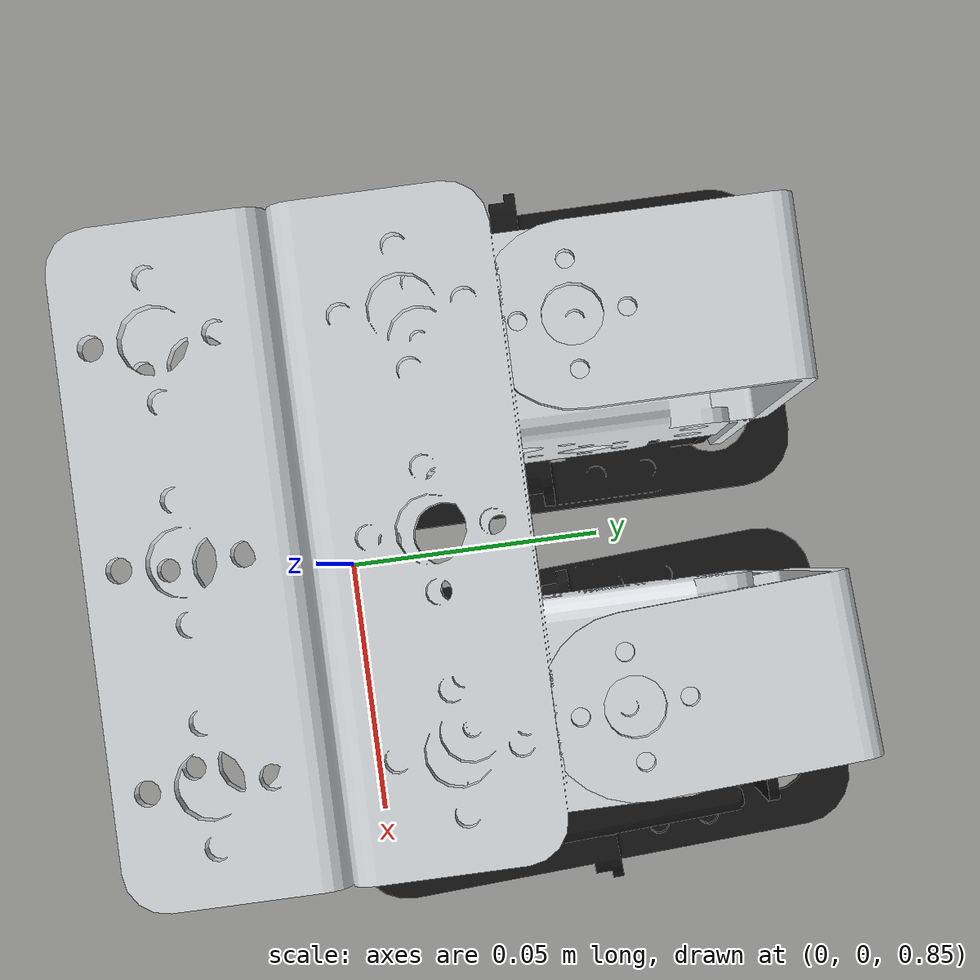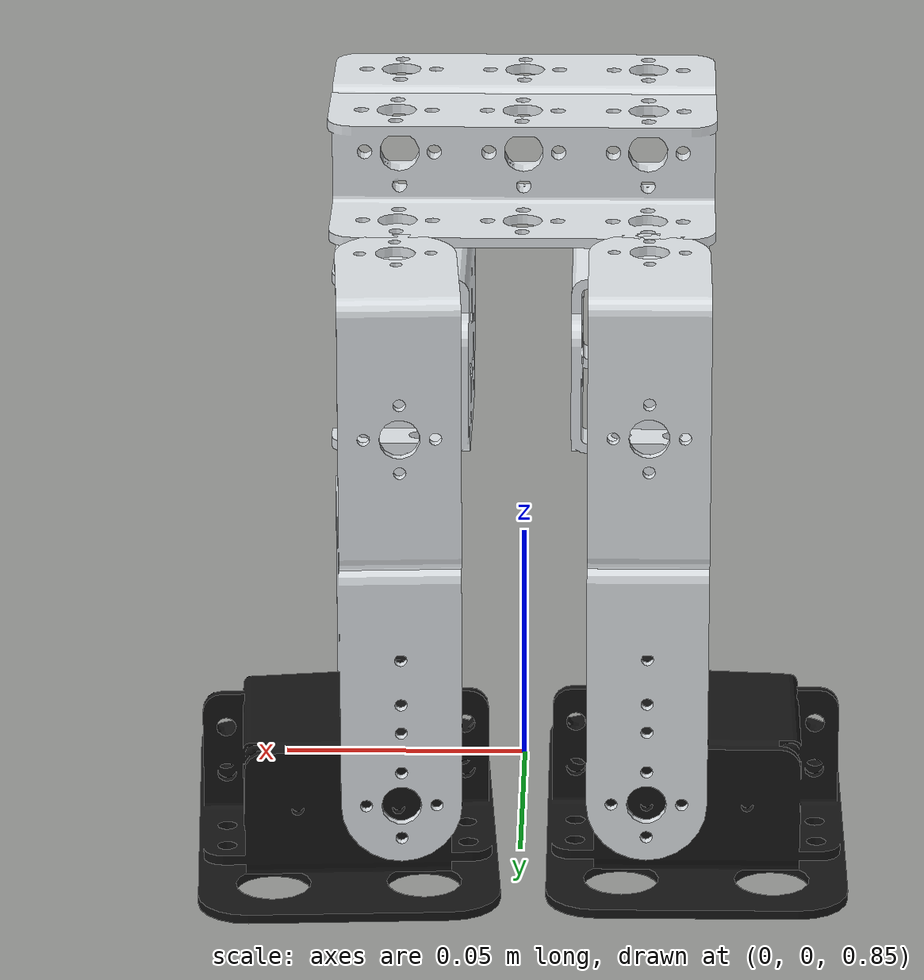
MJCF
<mujoco model="walker_assembly">
  <compiler angle="radian"/>

  <asset>
    <mesh name="base_link" content_type="model/stl" file="../meshes/base_link.STL"/>
    <mesh name="hipA" content_type="model/stl" file="../meshes/hipA.STL"/>
    <mesh name="footA" content_type="model/stl" file="../meshes/footA.STL"/>
    <mesh name="hipB" content_type="model/stl" file="../meshes/hipB.STL"/>
    <mesh name="footB" content_type="model/stl" file="../meshes/footB.STL"/>
  </asset>

  <worldbody>
               <geom name="ground" type="plane" pos="0 0 -0.2"
                     size="1 1 0.1"
                     rgba="0.8 0.8 0.8 1"
                     friction="1 0.8 0.01"/>
  <body name="robot_root" pos="0 0 1.0">
      <joint type="free" name="root"/>
    <geom type="mesh" rgba="0.89412 0.91373 0.92941 1" mesh="base_link" contype="1" conaffinity="1"/>
    <body name="hipA" pos="-0.0247156 0.0484689 -0.081">
      <inertial pos="-0.00065839 0.0066104 0.0024618" quat="1 0 0 0.000962944" mass="0.03832" diaginertia="3.1302e-05 1.8239e-05 1.6784e-05"/>
      <joint name="hip_a" pos="0 0 0" axis="0 0 1" range="-3 3" actuatorfrcrange="-10 10"/>
      <geom type="mesh" rgba="0.89412 0.91373 0.92941 1" mesh="hipA" contype="1" conaffinity="1"/>
      <body name="footA" pos="0.0218049 -0.0145258 -0.0480205">
        <inertial pos="-0.032552 0.015574 -0.0049319" quat="0.472692 0.525598 -0.496639 0.503645" mass="0.058051" diaginertia="2.53046e-05 1.60658e-05 1.36186e-05"/>
        <joint name="foot_a" pos="0 0 0" axis="0.00192582 -0.999998 0" range="-3 3" actuatorfrcrange="-10 10"/>
        <geom type="mesh" rgba="0.082353 0.082353 0.082353 1" mesh="footA" contype="1" conaffinity="1"/>
      </body>
    </body>
    <body name="hipB" pos="0.0246839 0.0487666 -0.081">
      <inertial pos="-0.00042934 0.0076229 0.0024618" quat="0.999604 0 0 0.0281282" mass="0.03832" diaginertia="3.13023e-05 1.82387e-05 1.6784e-05"/>
      <joint name="hip_b" pos="0 0 0" axis="0 0 1" range="-3 3" actuatorfrcrange="-10 10"/>
      <geom type="mesh" rgba="0.89412 0.91373 0.92941 1" mesh="hipB" contype="1" conaffinity="1"/>
      <body name="footB" pos="0.00183572 -0.0261381 -0.0479323">
        <inertial pos="0.00864469 0.0288397 -0.00520636" quat="0.489462 0.511922 -0.510726 0.487362" mass="0.058051" diaginertia="2.53049e-05 1.60655e-05 1.36185e-05"/>
        <joint name="foot_b" pos="0 0 0" axis="0.0562337 -0.998418 0" range="-3 3" actuatorfrcrange="-10 10"/>
        <geom type="mesh" rgba="0.0823529 0.0823529 0.0823529 1" mesh="footB" contype="1" conaffinity="1"/>
      </body>
    </body>
    </body>
  </worldbody>
  <actuator>

    <!-- Hip motors -->
    <motor name="hip_a_motor"
           joint="hip_a"
           gear="50"
           ctrlrange="-1 1"/>

    <motor name="hip_b_motor"
           joint="hip_b"
           gear="50"
           ctrlrange="-1 1"/>

    <!-- Foot motors -->
    <motor name="foot_a_motor"
           joint="foot_a"
           gear="30"
           ctrlrange="-1 1"/>

    <motor name="foot_b_motor"
           joint="foot_b"
           gear="30"
           ctrlrange="-1 1"/>

</actuator>
</mujoco>
